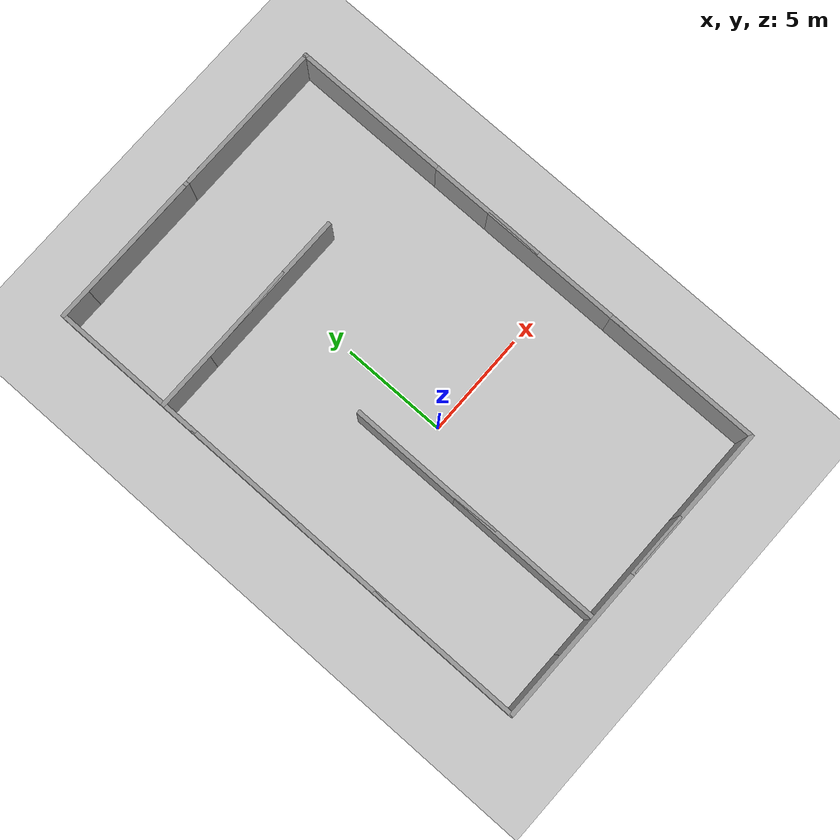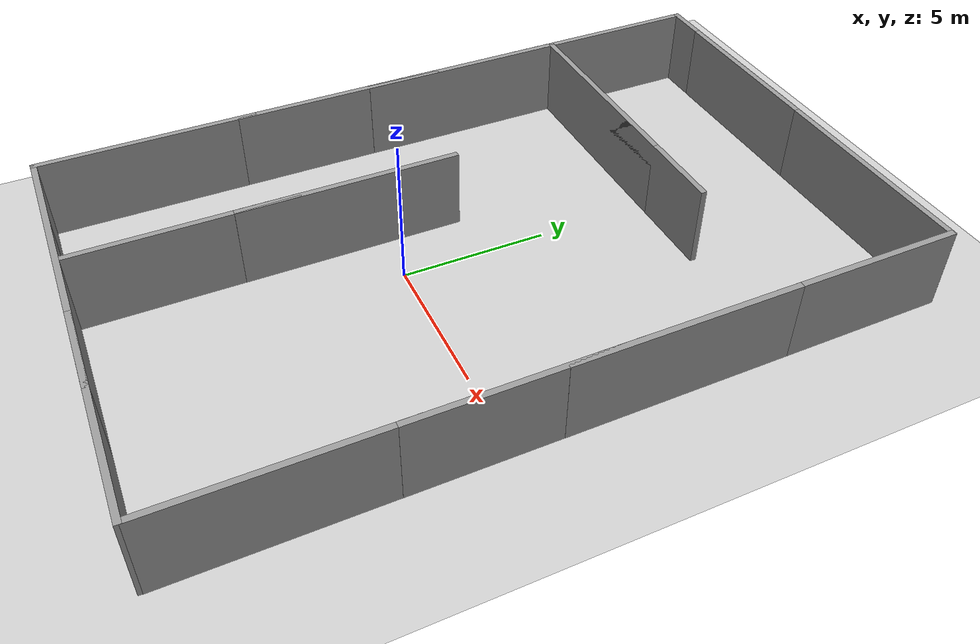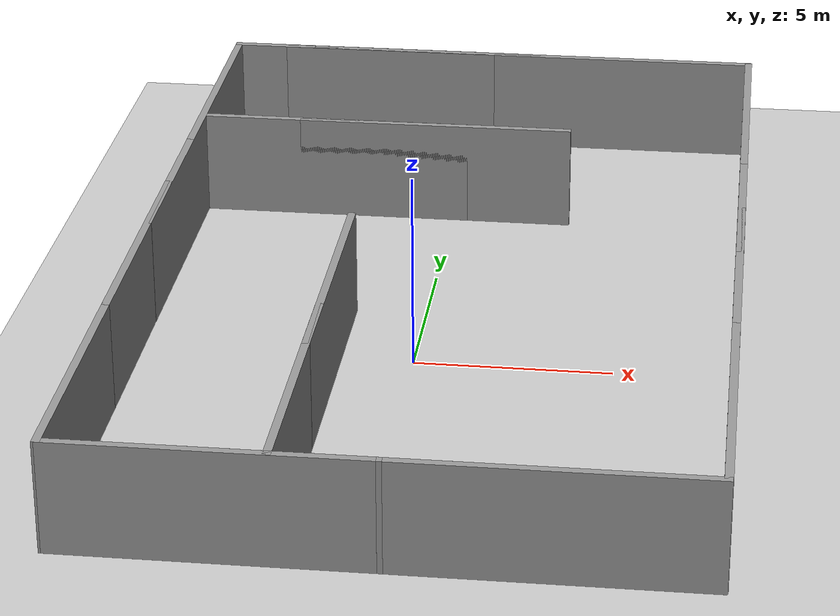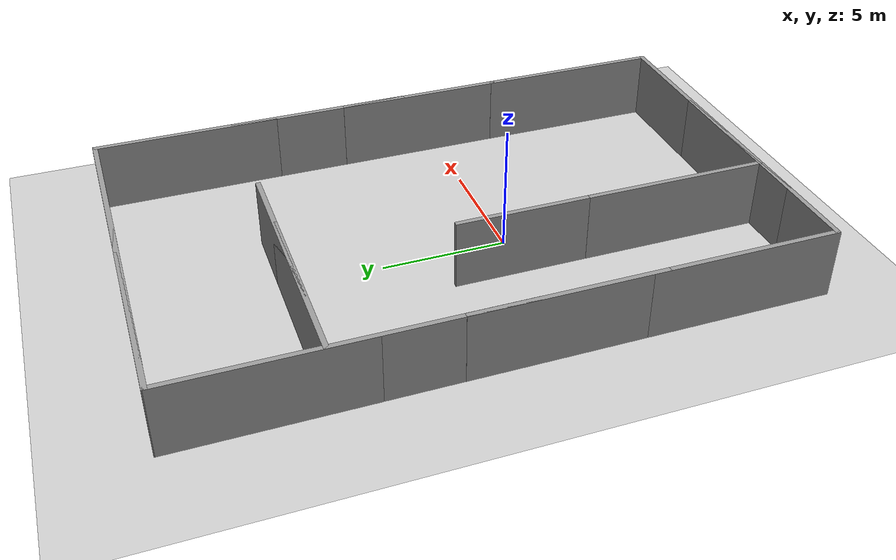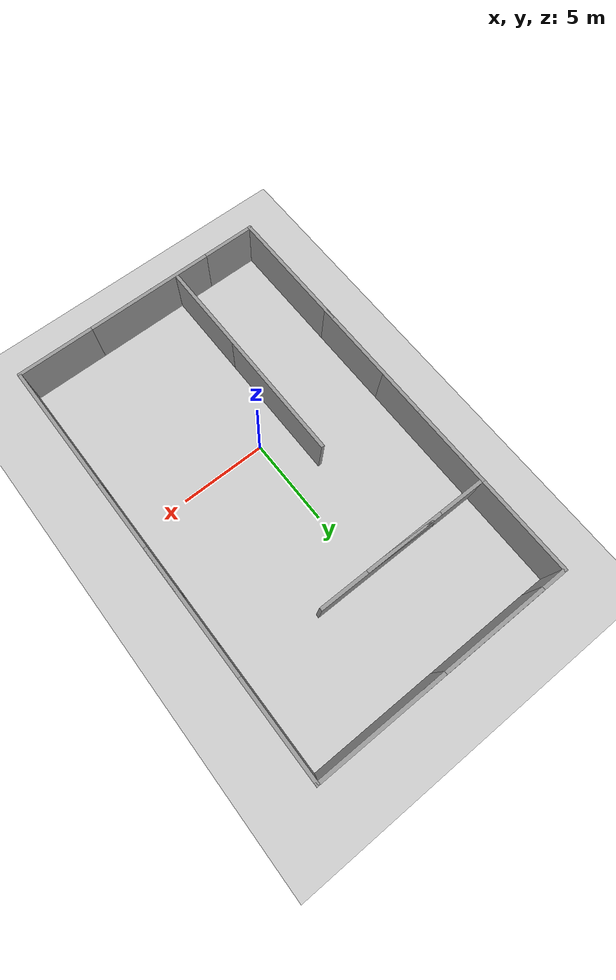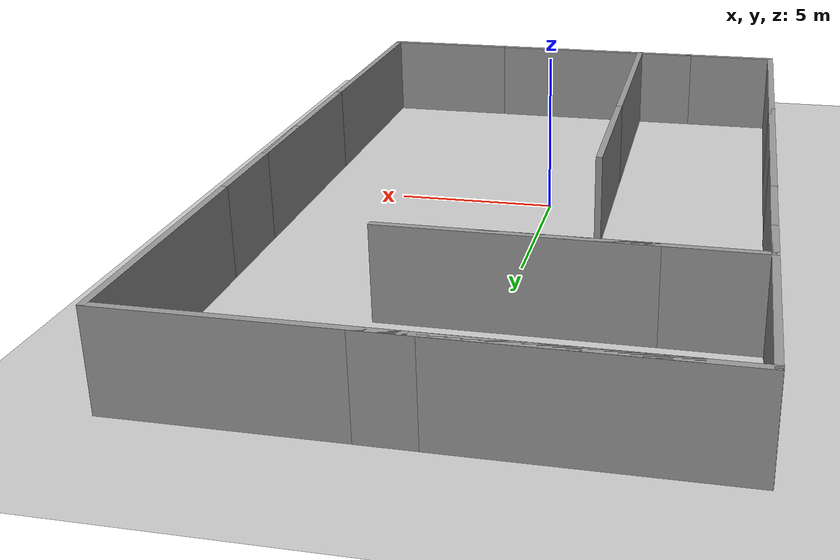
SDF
<sdf version="1.7">
 <world name="default">
  <plugin name="gazebo_ros_state" filename="libgazebo_ros_state.so">
   <ros><namespace>/gazebo_spawner</namespace></ros>
   <update_rate>1.0</update_rate>
  </plugin>
  <model name="ground_plane">
   <static>1</static>
   <link name="link">
    <collision name="collision">
     <geometry><plane><normal>0 0 1</normal><size>100 100</size></plane></geometry>
     <surface>
      <contact><collide_bitmask>65535</collide_bitmask></contact>
      <friction><ode><mu>100</mu><mu2>50</mu2></ode></friction>
     </surface>
    </collision>
    <visual name="visual">
     <cast_shadows>0</cast_shadows>
     <geometry><plane><normal>0 0 1</normal><size>100 100</size></plane></geometry>
     <material>
      <script><uri>file://media/materials/scripts/gazebo.material</uri><name>Gazebo/Grey</name></script>
     </material>
    </visual>
   </link>
  </model>
  <light name="sun" type="directional">
   <pose>0 0 10 0 -0 0</pose>
   <diffuse>0.8 0.8 0.8 1</diffuse>
   <specular>0.2 0.2 0.2 1</specular>
   <attenuation>
    <range>1000</range>
    <constant>0.9</constant>
    <linear>0.01</linear>
    <quadratic>0.001</quadratic>
   </attenuation>
   <direction>-0.5 0.1 -0.9</direction>
   <spot><inner_angle>0</inner_angle><outer_angle>0</outer_angle><falloff>0</falloff></spot>
  </light>
  <gravity>0 0 -9.8</gravity>
  <magnetic_field>6e-06 2.3e-05 -4.2e-05</magnetic_field>
  <atmosphere type="adiabatic"/>
  <physics type="ode">
   <max_step_size>0.001</max_step_size>
   <real_time_factor>1</real_time_factor>
   <real_time_update_rate>1000</real_time_update_rate>
  </physics>
  <scene><ambient>0.4 0.4 0.4 1</ambient><background>0.7 0.7 0.7 1</background><shadows>1</shadows></scene>
  <audio><device>default</device></audio>
  <spherical_coordinates>
   <surface_model>EARTH_WGS84</surface_model>
   <latitude_deg>0</latitude_deg>
   <longitude_deg>0</longitude_deg>
   <elevation>0</elevation>
   <heading_deg>0</heading_deg>
  </spherical_coordinates>
  <model name="grey_wall_clone">
   <static>1</static>
   <link name="link">
    <pose>0 0 1.4 0 -0 0</pose>
    <collision name="collision"><geometry><box><size>7.5 0.2 2.8</size></box></geometry></collision>
    <visual name="visual">
     <cast_shadows>0</cast_shadows>
     <geometry><box><size>7.5 0.2 2.8</size></box></geometry>
     <material>
      <script>
       <uri>model://grey_wall/materials/scripts</uri>
       <uri>model://grey_wall/materials/textures</uri>
       <name>vrc/grey_wall</name>
      </script>
     </material>
    </visual>
   </link>
   <pose>-3.35128 8.93459 0 0 -0 0</pose>
  </model>
  <model name="grey_wall_0_clone">
   <static>1</static>
   <link name="link">
    <pose>0 0 1.4 0 -0 0</pose>
    <collision name="collision"><geometry><box><size>7.5 0.2 2.8</size></box></geometry></collision>
    <visual name="visual">
     <cast_shadows>0</cast_shadows>
     <geometry><box><size>7.5 0.2 2.8</size></box></geometry>
     <material>
      <script>
       <uri>model://grey_wall/materials/scripts</uri>
       <uri>model://grey_wall/materials/textures</uri>
       <name>vrc/grey_wall</name>
      </script>
     </material>
    </visual>
   </link>
   <pose>-6.99495 -6.36801 0 0 0 -1.57</pose>
  </model>
  <model name="grey_wall_0_clone_clone">
   <static>1</static>
   <link name="link">
    <pose>0 0 1.4 0 -0 0</pose>
    <collision name="collision"><geometry><box><size>7.5 0.2 2.8</size></box></geometry></collision>
    <visual name="visual">
     <cast_shadows>0</cast_shadows>
     <geometry><box><size>7.5 0.2 2.8</size></box></geometry>
     <material>
      <script>
       <uri>model://grey_wall/materials/scripts</uri>
       <uri>model://grey_wall/materials/textures</uri>
       <name>vrc/grey_wall</name>
      </script>
     </material>
    </visual>
   </link>
   <pose>-7 0.491411 0 0 0 -1.57</pose>
  </model>
  <model name="grey_wall_0_clone_clone_clone">
   <static>1</static>
   <link name="link">
    <pose>0 0 1.4 0 -0 0</pose>
    <collision name="collision"><geometry><box><size>7.5 0.2 2.8</size></box></geometry></collision>
    <visual name="visual">
     <cast_shadows>0</cast_shadows>
     <geometry><box><size>7.5 0.2 2.8</size></box></geometry>
     <material>
      <script>
       <uri>model://grey_wall/materials/scripts</uri>
       <uri>model://grey_wall/materials/textures</uri>
       <name>vrc/grey_wall</name>
      </script>
     </material>
    </visual>
   </link>
   <pose>-7 5.27978 0 0 0 -1.57</pose>
  </model>
  <model name="grey_wall_0_clone_clone_clone_clone">
   <static>1</static>
   <link name="link">
    <pose>0 0 1.4 0 -0 0</pose>
    <collision name="collision"><geometry><box><size>7.5 0.2 2.8</size></box></geometry></collision>
    <visual name="visual">
     <cast_shadows>0</cast_shadows>
     <geometry><box><size>7.5 0.2 2.8</size></box></geometry>
     <material>
      <script>
       <uri>model://grey_wall/materials/scripts</uri>
       <uri>model://grey_wall/materials/textures</uri>
       <name>vrc/grey_wall</name>
      </script>
     </material>
    </visual>
   </link>
   <pose>8 5.27978 0 0 0 -1.57</pose>
  </model>
  <model name="grey_wall_0_clone_clone_clone_0">
   <static>1</static>
   <link name="link">
    <pose>0 0 1.4 0 -0 0</pose>
    <collision name="collision"><geometry><box><size>7.5 0.2 2.8</size></box></geometry></collision>
    <visual name="visual">
     <cast_shadows>0</cast_shadows>
     <geometry><box><size>7.5 0.2 2.8</size></box></geometry>
     <material>
      <script>
       <uri>model://grey_wall/materials/scripts</uri>
       <uri>model://grey_wall/materials/textures</uri>
       <name>vrc/grey_wall</name>
      </script>
     </material>
    </visual>
   </link>
   <pose>8 0.491411 0 0 0 -1.57</pose>
  </model>
  <model name="grey_wall_0_clone_clone_0">
   <static>1</static>
   <link name="link">
    <pose>0 0 1.4 0 -0 0</pose>
    <collision name="collision"><geometry><box><size>7.5 0.2 2.8</size></box></geometry></collision>
    <visual name="visual">
     <cast_shadows>0</cast_shadows>
     <geometry><box><size>7.5 0.2 2.8</size></box></geometry>
     <material>
      <script>
       <uri>model://grey_wall/materials/scripts</uri>
       <uri>model://grey_wall/materials/textures</uri>
       <name>vrc/grey_wall</name>
      </script>
     </material>
    </visual>
   </link>
   <pose>8.00156 -6.24431 0 0 0 -1.57</pose>
  </model>
  <model name="grey_wall_clone_clone">
   <static>1</static>
   <link name="link">
    <pose>0 0 1.4 0 -0 0</pose>
    <collision name="collision"><geometry><box><size>7.5 0.2 2.8</size></box></geometry></collision>
    <visual name="visual">
     <cast_shadows>0</cast_shadows>
     <geometry><box><size>7.5 0.2 2.8</size></box></geometry>
     <material>
      <script>
       <uri>model://grey_wall/materials/scripts</uri>
       <uri>model://grey_wall/materials/textures</uri>
       <name>vrc/grey_wall</name>
      </script>
     </material>
    </visual>
   </link>
   <pose>-0.509058 8.93459 0 0 -0 0</pose>
  </model>
  <model name="grey_wall_clone_clone_clone_clone">
   <static>1</static>
   <link name="link">
    <pose>0 0 1.4 0 -0 0</pose>
    <collision name="collision"><geometry><box><size>7.5 0.2 2.8</size></box></geometry></collision>
    <visual name="visual">
     <cast_shadows>0</cast_shadows>
     <geometry><box><size>7.5 0.2 2.8</size></box></geometry>
     <material>
      <script>
       <uri>model://grey_wall/materials/scripts</uri>
       <uri>model://grey_wall/materials/textures</uri>
       <name>vrc/grey_wall</name>
      </script>
     </material>
    </visual>
   </link>
   <pose>4.34322 -10.0207 0 0 -0 0</pose>
  </model>
  <model name="grey_wall_clone_clone_clone_clone_clone">
   <static>1</static>
   <link name="link">
    <pose>0 0 1.4 0 -0 0</pose>
    <collision name="collision"><geometry><box><size>7.5 0.2 2.8</size></box></geometry></collision>
    <visual name="visual">
     <cast_shadows>0</cast_shadows>
     <geometry><box><size>7.5 0.2 2.8</size></box></geometry>
     <material>
      <script>
       <uri>model://grey_wall/materials/scripts</uri>
       <uri>model://grey_wall/materials/textures</uri>
       <name>vrc/grey_wall</name>
      </script>
     </material>
    </visual>
   </link>
   <pose>-0.184177 -10.0204 0 0 -0 0</pose>
  </model>
  <model name="grey_wall_clone_clone_clone_clone_clone_clone">
   <static>1</static>
   <link name="link">
    <pose>0 0 1.4 0 -0 0</pose>
    <collision name="collision"><geometry><box><size>7.5 0.2 2.8</size></box></geometry></collision>
    <visual name="visual">
     <cast_shadows>0</cast_shadows>
     <geometry><box><size>7.5 0.2 2.8</size></box></geometry>
     <material>
      <script>
       <uri>model://grey_wall/materials/scripts</uri>
       <uri>model://grey_wall/materials/textures</uri>
       <name>vrc/grey_wall</name>
      </script>
     </material>
    </visual>
   </link>
   <pose>-3.28702 -10.0208 0 0 -0 0</pose>
  </model>
  <model name="grey_wall_0_clone_clone_1">
   <static>1</static>
   <link name="link">
    <pose>0 0 1.4 0 -0 0</pose>
    <collision name="collision"><geometry><box><size>7.5 0.2 2.8</size></box></geometry></collision>
    <visual name="visual">
     <cast_shadows>0</cast_shadows>
     <geometry><box><size>7.5 0.2 2.8</size></box></geometry>
     <material>
      <script>
       <uri>model://grey_wall/materials/scripts</uri>
       <uri>model://grey_wall/materials/textures</uri>
       <name>vrc/grey_wall</name>
      </script>
     </material>
    </visual>
   </link>
   <pose>-1.91662 -6.34514 0 0 0 -1.57</pose>
  </model>
  <model name="grey_wall_0_clone_clone_1_clone">
   <static>1</static>
   <link name="link">
    <pose>0 0 1.4 0 -0 0</pose>
    <collision name="collision"><geometry><box><size>7.5 0.2 2.8</size></box></geometry></collision>
    <visual name="visual">
     <cast_shadows>0</cast_shadows>
     <geometry><box><size>7.5 0.2 2.8</size></box></geometry>
     <material>
      <script>
       <uri>model://grey_wall/materials/scripts</uri>
       <uri>model://grey_wall/materials/textures</uri>
       <name>vrc/grey_wall</name>
      </script>
     </material>
    </visual>
   </link>
   <pose>-1.91823 -0.989189 0 0 0 -1.57</pose>
  </model>
  <model name="grey_wall_0_clone_clone_clone_clone_clone">
   <static>1</static>
   <link name="link">
    <pose>0 0 1.4 0 -0 0</pose>
    <collision name="collision"><geometry><box><size>7.5 0.2 2.8</size></box></geometry></collision>
    <visual name="visual">
     <cast_shadows>0</cast_shadows>
     <geometry><box><size>7.5 0.2 2.8</size></box></geometry>
     <material>
      <script>
       <uri>model://grey_wall/materials/scripts</uri>
       <uri>model://grey_wall/materials/textures</uri>
       <name>vrc/grey_wall</name>
      </script>
     </material>
    </visual>
   </link>
   <pose>7.99486 10.8917 0 0 0 -1.57</pose>
  </model>
  <model name="grey_wall_clone_clone_clone">
   <static>1</static>
   <link name="link">
    <pose>0 0 1.4 0 -0 0</pose>
    <collision name="collision"><geometry><box><size>7.5 0.2 2.8</size></box></geometry></collision>
    <visual name="visual">
     <cast_shadows>0</cast_shadows>
     <geometry><box><size>7.5 0.2 2.8</size></box></geometry>
     <material>
      <script>
       <uri>model://grey_wall/materials/scripts</uri>
       <uri>model://grey_wall/materials/textures</uri>
       <name>vrc/grey_wall</name>
      </script>
     </material>
    </visual>
   </link>
   <pose>4.33347 14.5613 0 0 -0 0</pose>
  </model>
  <model name="grey_wall_clone_clone_clone_clone_0">
   <static>1</static>
   <link name="link">
    <pose>0 0 1.4 0 -0 0</pose>
    <collision name="collision"><geometry><box><size>7.5 0.2 2.8</size></box></geometry></collision>
    <visual name="visual">
     <cast_shadows>0</cast_shadows>
     <geometry><box><size>7.5 0.2 2.8</size></box></geometry>
     <material>
      <script>
       <uri>model://grey_wall/materials/scripts</uri>
       <uri>model://grey_wall/materials/textures</uri>
       <name>vrc/grey_wall</name>
      </script>
     </material>
    </visual>
   </link>
   <pose>-1.83098 14.5647 0 0 -0 0</pose>
  </model>
  <model name="grey_wall_clone_clone_clone_clone_0_clone">
   <static>1</static>
   <link name="link">
    <pose>0 0 1.4 0 -0 0</pose>
    <collision name="collision"><geometry><box><size>7.5 0.2 2.8</size></box></geometry></collision>
    <visual name="visual">
     <cast_shadows>0</cast_shadows>
     <geometry><box><size>7.5 0.2 2.8</size></box></geometry>
     <material>
      <script>
       <uri>model://grey_wall/materials/scripts</uri>
       <uri>model://grey_wall/materials/textures</uri>
       <name>vrc/grey_wall</name>
      </script>
     </material>
    </visual>
   </link>
   <pose>-3.35191 14.5704 0 0 -0 0</pose>
  </model>
  <model name="grey_wall_0_clone_clone_clone_clone_0">
   <static>1</static>
   <link name="link">
    <pose>0 0 1.4 0 -0 0</pose>
    <collision name="collision"><geometry><box><size>7.5 0.2 2.8</size></box></geometry></collision>
    <visual name="visual">
     <cast_shadows>0</cast_shadows>
     <geometry><box><size>7.5 0.2 2.8</size></box></geometry>
     <material>
      <script>
       <uri>model://grey_wall/materials/scripts</uri>
       <uri>model://grey_wall/materials/textures</uri>
       <name>vrc/grey_wall</name>
      </script>
     </material>
    </visual>
   </link>
   <pose>-7.00788 10.8858 0 0 0 -1.57</pose>
  </model>
 </world>
</sdf>
